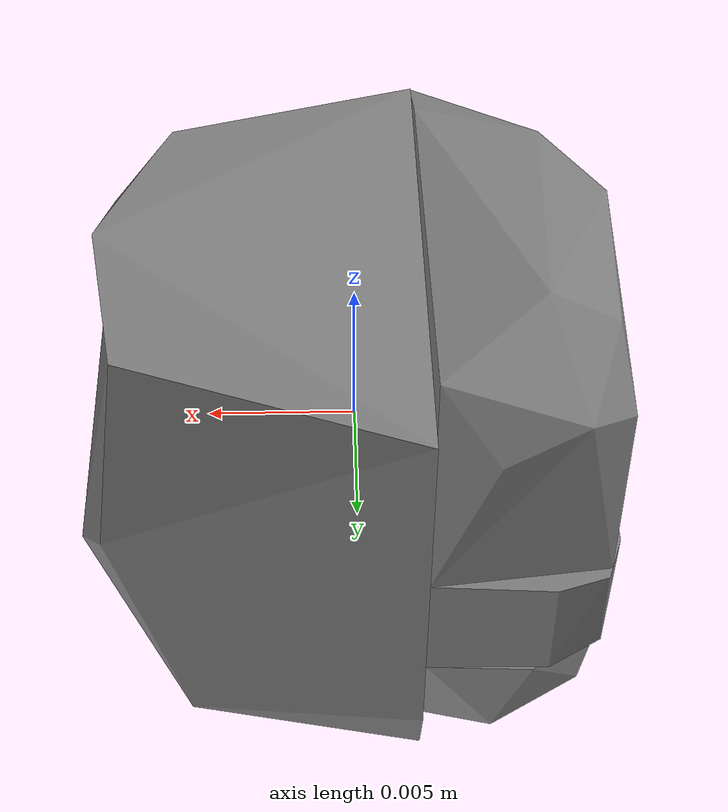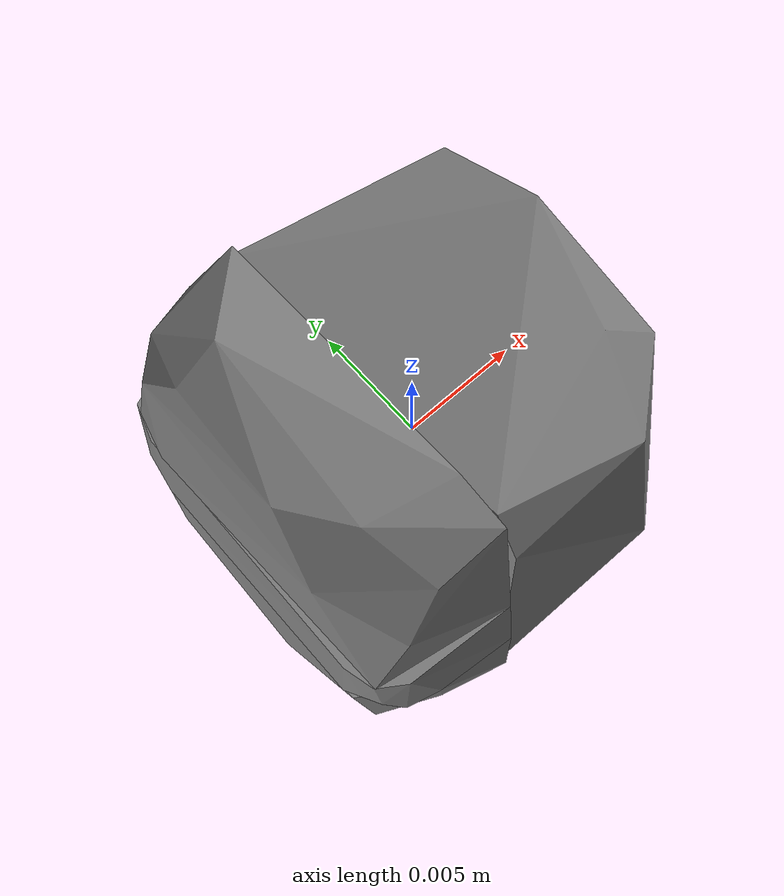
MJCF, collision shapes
<mujoco model="dice">
  <compiler angle="radian" />

  <asset>
    <mesh name="dice_visual_mesh" file="dice/textured.obj" />
    <mesh name="dice_collision_mesh_0" file="dice/textured_coacd_0.stl" />
    <mesh name="dice_collision_mesh_1" file="dice/textured_coacd_1.stl" />
    <mesh name="dice_collision_mesh_2" file="dice/textured_coacd_2.stl" />
    <mesh name="dice_collision_mesh_3" file="dice/textured_coacd_3.stl" />
    <texture name="dice_texture" type="2d" file="dice/texture_map.png" />
    <material name="dice_material" texture="dice_texture" />
  </asset>

  <worldbody>
    <body name="dice" pos="0 0 0" euler="0 0 0">
      <freejoint name="dice_joint" />
      <geom name="dice_visual_geom" type="mesh" mesh="dice_visual_mesh" material="dice_material" pos="0.011207378509108022 -0.00916334296155129 -0.008407354793330487" euler="0 0 0" contype="0" conaffinity="0" group="0" />
      <geom name="dice_collision_geom_0" type="mesh" mesh="dice_collision_mesh_0" pos="0.011207378509108022 -0.00916334296155129 -0.008407354793330487" euler="0 0 0" contype="1" conaffinity="1" group="3" />
      <geom name="dice_collision_geom_1" type="mesh" mesh="dice_collision_mesh_1" pos="0.011207378509108022 -0.00916334296155129 -0.008407354793330487" euler="0 0 0" contype="1" conaffinity="1" group="3" />
      <geom name="dice_collision_geom_2" type="mesh" mesh="dice_collision_mesh_2" pos="0.011207378509108022 -0.00916334296155129 -0.008407354793330487" euler="0 0 0" contype="1" conaffinity="1" group="3" />
      <geom name="dice_collision_geom_3" type="mesh" mesh="dice_collision_mesh_3" pos="0.011207378509108022 -0.00916334296155129 -0.008407354793330487" euler="0 0 0" contype="1" conaffinity="1" group="3" />
      <inertial pos="0 0 0" euler="0 0 0" mass="0.0052" diaginertia="0.001 0.001 0.001" />
    </body>
  </worldbody>
</mujoco>
